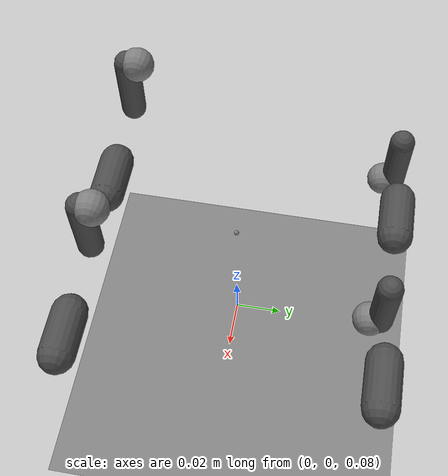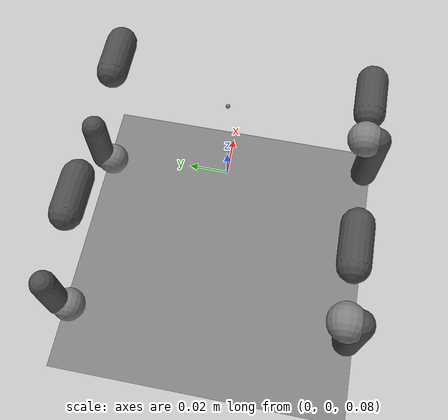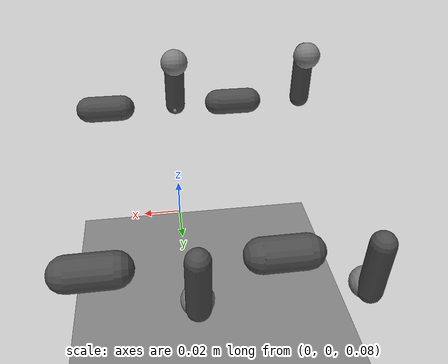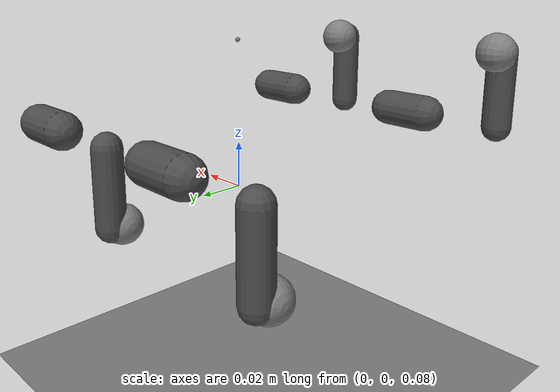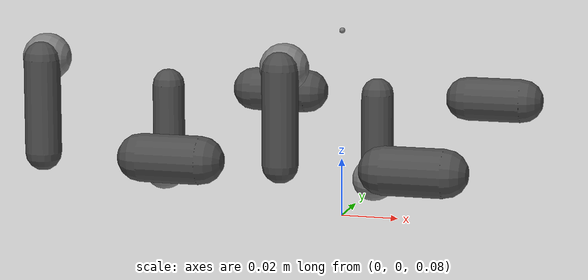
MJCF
<mujoco model="pidog_quadruped_with_meshes">
  <!-- Compiler settings - tell MuJoCo where to find mesh files -->
  <compiler angle="radian" meshdir="../meshes" autolimits="true"/>

  <option timestep="0.001" iterations="50" solver="Newton" tolerance="1e-10"/>

  <!-- Visual and rendering settings -->
  <visual>
    <headlight ambient="0.5 0.5 0.5"/>
    <rgba haze="0.15 0.25 0.35 1"/>
    <global offwidth="640" offheight="480"/>
  </visual>

  <asset>
    <!-- Load actual PiDog mesh files (OBJ format for MuJoCo) -->
    <mesh name="body_mesh" file="body.obj" scale="0.001 0.001 0.001"/>
    <mesh name="leg_b_mesh" file="leg_b.obj" scale="0.001 0.001 0.001"/>
    <mesh name="leg_a_mesh" file="leg_a.obj" scale="0.001 0.001 0.001"/>
    <mesh name="acrylic_mesh" file="acrylic.obj" scale="0.001 0.001 0.001"/>
    <mesh name="motor_mesh" file="motor.obj" scale="0.001 0.001 0.001"/>

    <!-- Materials -->
    <material name="body_mat" rgba="0.2 0.6 0.8 1"/>
    <material name="leg_mat" rgba="0.3 0.3 0.3 1"/>
    <material name="ground_mat" rgba="0.5 0.5 0.5 1"/>
  </asset>

  <default>
    <joint damping="0.5" armature="0.001"/>
    <geom contype="1" conaffinity="1" condim="3" friction="0.8 0.005 0.0001"/>
    <motor ctrllimited="true" ctrlrange="-1.57 1.57"/>
  </default>

  <worldbody>
    <!-- Ground plane -->
    <geom name="ground" type="plane" size="10 10 0.1" material="ground_mat"
          friction="1.0 0.005 0.0001" solimp="0.9 0.95 0.001" solref="0.002 1"/>

    <!-- Lighting -->
    <light directional="true" diffuse="0.6 0.6 0.6" specular="0.3 0.3 0.3"
           pos="0 0 4" dir="0 0 -1" castshadow="false"/>
    <light directional="true" diffuse="0.4 0.4 0.4" specular="0.1 0.1 0.1"
           pos="0 0 4" dir="0 0 -1"/>

    <!-- Robot body -->
    <body name="body" pos="0 0 0.12">
      <freejoint/>

      <!-- Body visual mesh (for appearance) -->
      <geom name="body_visual" type="mesh" mesh="body_mesh"
            material="body_mat" contype="0" conaffinity="0" group="1"/>

      <!-- Body collision shape (simplified for physics, matching actual dimensions) -->
      <geom name="body_collision" type="box" size="0.0405 0.06685 0.025"
            mass="0.300" rgba="0 0 0 0"/>  <!-- Invisible collision box -->

      <!-- IMU sensor site -->
      <site name="imu_site" pos="0 0 0.025" size="0.001"/>

      <!-- BACK RIGHT LEG -->
      <body name="back_right_leg_b" pos="-0.0405 0.06685 -0.009" euler="0 1.57 0">
        <joint name="body_to_back_right_leg_b" type="hinge" axis="0 0 1"
               range="-1.57 1.57" damping="0.5"/>

        <!-- Visual mesh -->
        <geom name="br_shoulder_visual" type="mesh" mesh="leg_b_mesh"
              contype="0" conaffinity="0" group="1"/>
        <!-- Collision capsule -->
        <geom name="br_shoulder_collision" type="capsule" size="0.008 0.01"
              material="leg_mat" mass="0.015"/>

        <body name="back_right_leg_a" pos="0 0 -0.044" euler="0 3.1415 0">
          <joint name="back_right_leg_b_to_a" type="hinge" axis="0 1 0"
                 range="-1.57 1.57" damping="0.5"/>

          <!-- Visual mesh -->
          <geom name="br_knee_visual" type="mesh" mesh="leg_a_mesh"
                contype="0" conaffinity="0" group="1"/>
          <!-- Collision capsule -->
          <geom name="br_knee_collision" type="capsule" size="0.006 0.025"
                fromto="0 0 0 -0.031 0 0" material="leg_mat" mass="0.010"/>

          <!-- Foot -->
          <body name="back_right_foot" pos="-0.031 -0.005 0">
            <!-- Visual mesh -->
            <geom name="br_foot_visual" type="mesh" mesh="acrylic_mesh"
                  contype="0" conaffinity="0" group="1"/>
            <!-- Collision sphere -->
            <geom name="br_foot_collision" type="sphere" size="0.008"
                  mass="0.003" friction="0.8 0.005 0.0001"/>
            <site name="br_foot_site" pos="0 0 0" size="0.001"/>
          </body>
        </body>
      </body>

      <!-- FRONT RIGHT LEG -->
      <body name="front_right_leg_b" pos="0.0405 0.06685 -0.009" euler="0 1.57 0">
        <joint name="body_to_front_right_leg_b" type="hinge" axis="0 0 1"
               range="-1.57 1.57" damping="0.5"/>
        <geom name="fr_shoulder_visual" type="mesh" mesh="leg_b_mesh"
              contype="0" conaffinity="0" group="1"/>
        <geom name="fr_shoulder_collision" type="capsule" size="0.008 0.01"
              material="leg_mat" mass="0.015"/>

        <body name="front_right_leg_a" pos="0 0 -0.044" euler="0 3.1415 0">
          <joint name="front_right_leg_b_to_a" type="hinge" axis="0 1 0"
                 range="-1.57 1.57" damping="0.5"/>
          <geom name="fr_knee_visual" type="mesh" mesh="leg_a_mesh"
                contype="0" conaffinity="0" group="1"/>
          <geom name="fr_knee_collision" type="capsule" size="0.006 0.025"
                fromto="0 0 0 -0.031 0 0" material="leg_mat" mass="0.010"/>

          <body name="front_right_foot" pos="-0.031 -0.005 0">
            <geom name="fr_foot_visual" type="mesh" mesh="acrylic_mesh"
                  contype="0" conaffinity="0" group="1"/>
            <geom name="fr_foot_collision" type="sphere" size="0.008"
                  mass="0.003" friction="0.8 0.005 0.0001"/>
            <site name="fr_foot_site" pos="0 0 0" size="0.001"/>
          </body>
        </body>
      </body>

      <!-- BACK LEFT LEG -->
      <body name="back_left_leg_b" pos="-0.0405 -0.06685 -0.009" euler="0 1.57 3.1415">
        <joint name="body_to_back_left_leg_b" type="hinge" axis="0 0 1"
               range="-1.57 1.57" damping="0.5"/>
        <geom name="bl_shoulder_visual" type="mesh" mesh="leg_b_mesh"
              contype="0" conaffinity="0" group="1"/>
        <geom name="bl_shoulder_collision" type="capsule" size="0.008 0.01"
              material="leg_mat" mass="0.015"/>

        <body name="back_left_leg_a" pos="0 0 -0.044" euler="0 3.1415 0">
          <joint name="back_left_leg_b_to_a" type="hinge" axis="0 1 0"
                 range="-1.57 1.57" damping="0.5"/>
          <geom name="bl_knee_visual" type="mesh" mesh="leg_a_mesh"
                contype="0" conaffinity="0" group="1"/>
          <geom name="bl_knee_collision" type="capsule" size="0.006 0.025"
                fromto="0 0 0 -0.031 0 0" material="leg_mat" mass="0.010"/>

          <body name="back_left_foot" pos="-0.031 -0.005 0">
            <geom name="bl_foot_visual" type="mesh" mesh="acrylic_mesh"
                  contype="0" conaffinity="0" group="1"/>
            <geom name="bl_foot_collision" type="sphere" size="0.008"
                  mass="0.003" friction="0.8 0.005 0.0001"/>
            <site name="bl_foot_site" pos="0 0 0" size="0.001"/>
          </body>
        </body>
      </body>

      <!-- FRONT LEFT LEG -->
      <body name="front_left_leg_b" pos="0.0405 -0.06685 -0.009" euler="0 1.57 3.1415">
        <joint name="body_to_front_left_leg_b" type="hinge" axis="0 0 1"
               range="-1.57 1.57" damping="0.5"/>
        <geom name="fl_shoulder_visual" type="mesh" mesh="leg_b_mesh"
              contype="0" conaffinity="0" group="1"/>
        <geom name="fl_shoulder_collision" type="capsule" size="0.008 0.01"
              material="leg_mat" mass="0.015"/>

        <body name="front_left_leg_a" pos="0 0 -0.044" euler="0 3.1415 0">
          <joint name="front_left_leg_b_to_a" type="hinge" axis="0 1 0"
                 range="-1.57 1.57" damping="0.5"/>
          <geom name="fl_knee_visual" type="mesh" mesh="leg_a_mesh"
                contype="0" conaffinity="0" group="1"/>
          <geom name="fl_knee_collision" type="capsule" size="0.006 0.025"
                fromto="0 0 0 -0.031 0 0" material="leg_mat" mass="0.010"/>

          <body name="front_left_foot" pos="-0.031 -0.005 0">
            <geom name="fl_foot_visual" type="mesh" mesh="acrylic_mesh"
                  contype="0" conaffinity="0" group="1"/>
            <geom name="fl_foot_collision" type="sphere" size="0.008"
                  mass="0.003" friction="0.8 0.005 0.0001"/>
            <site name="fl_foot_site" pos="0 0 0" size="0.001"/>
          </body>
        </body>
      </body>

    </body>
  </worldbody>

  <!-- Actuators (same as simple model) -->
  <actuator>
    <position name="act_br_shoulder" joint="body_to_back_right_leg_b"
              kp="8.0" kv="2.5" forcerange="-0.15 0.15"/>
    <position name="act_br_knee" joint="back_right_leg_b_to_a"
              kp="8.0" kv="2.5" forcerange="-0.15 0.15"/>
    <position name="act_fr_shoulder" joint="body_to_front_right_leg_b"
              kp="8.0" kv="2.5" forcerange="-0.15 0.15"/>
    <position name="act_fr_knee" joint="front_right_leg_b_to_a"
              kp="8.0" kv="2.5" forcerange="-0.15 0.15"/>
    <position name="act_bl_shoulder" joint="body_to_back_left_leg_b"
              kp="8.0" kv="2.5" forcerange="-0.15 0.15"/>
    <position name="act_bl_knee" joint="back_left_leg_b_to_a"
              kp="8.0" kv="2.5" forcerange="-0.15 0.15"/>
    <position name="act_fl_shoulder" joint="body_to_front_left_leg_b"
              kp="8.0" kv="2.5" forcerange="-0.15 0.15"/>
    <position name="act_fl_knee" joint="front_left_leg_b_to_a"
              kp="8.0" kv="2.5" forcerange="-0.15 0.15"/>
  </actuator>

  <!-- Sensors (same as simple model) -->
  <sensor>
    <framequat name="imu_orientation" objtype="site" objname="imu_site"/>
    <gyro name="imu_gyro" site="imu_site" noise="0.01"/>
    <accelerometer name="imu_accel" site="imu_site" noise="0.1"/>

    <jointpos name="jp_br_shoulder" joint="body_to_back_right_leg_b"/>
    <jointpos name="jp_br_knee" joint="back_right_leg_b_to_a"/>
    <jointpos name="jp_fr_shoulder" joint="body_to_front_right_leg_b"/>
    <jointpos name="jp_fr_knee" joint="front_right_leg_b_to_a"/>
    <jointpos name="jp_bl_shoulder" joint="body_to_back_left_leg_b"/>
    <jointpos name="jp_bl_knee" joint="back_left_leg_b_to_a"/>
    <jointpos name="jp_fl_shoulder" joint="body_to_front_left_leg_b"/>
    <jointpos name="jp_fl_knee" joint="front_left_leg_b_to_a"/>

    <jointvel name="jv_br_shoulder" joint="body_to_back_right_leg_b"/>
    <jointvel name="jv_br_knee" joint="back_right_leg_b_to_a"/>
    <jointvel name="jv_fr_shoulder" joint="body_to_front_right_leg_b"/>
    <jointvel name="jv_fr_knee" joint="front_right_leg_b_to_a"/>
    <jointvel name="jv_bl_shoulder" joint="body_to_back_left_leg_b"/>
    <jointvel name="jv_bl_knee" joint="back_left_leg_b_to_a"/>
    <jointvel name="jv_fl_shoulder" joint="body_to_front_left_leg_b"/>
    <jointvel name="jv_fl_knee" joint="front_left_leg_b_to_a"/>

    <touch name="contact_br_foot" site="br_foot_site"/>
    <touch name="contact_fr_foot" site="fr_foot_site"/>
    <touch name="contact_bl_foot" site="bl_foot_site"/>
    <touch name="contact_fl_foot" site="fl_foot_site"/>
  </sensor>

</mujoco>
